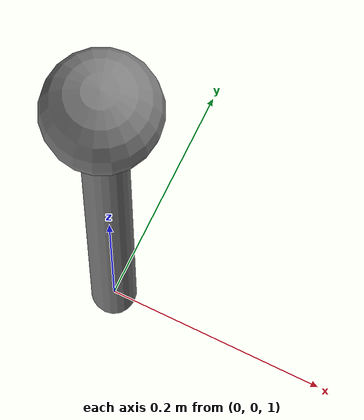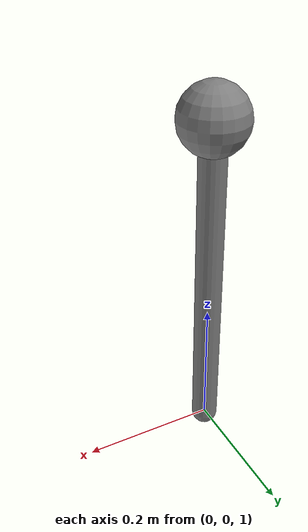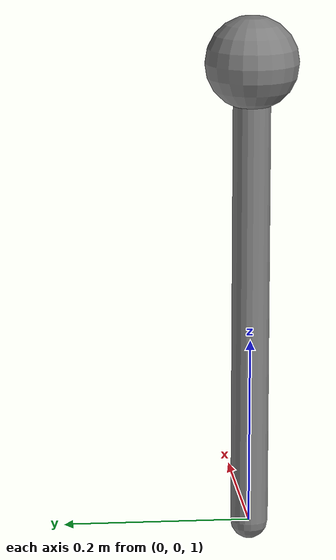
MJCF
<mujoco model="inverted_pendulum">
    <option timestep="0.02" gravity="0 0 -9.81"/>

    <worldbody>
        <light pos="0 0 2"/>

        <!-- Ground (visual only) -->
        <geom type="plane" size="2 2 0.1" rgba="0.8 0.8 0.8 1"/>

        <!-- Pendulum body -->
        <body name="pole" pos="0 0 1">
            <!-- Hinge at the pivot -->
            <joint name="hinge"
                   type="hinge"
                   pos="0 0 0"
                   axis="1 0 0"
                   damping="0.01"/>

            <!-- Massless rod -->
            <geom type="capsule"
                  fromto="0 0 0 0 0 0.5"
                  size="0.02"
                  mass="0"/>

            <!-- Point mass -->
            <geom type="sphere"
                  pos="0 0 0.5"
                  size="0.05"
                  mass="1"/>
        </body>
    </worldbody>

    <actuator>
        <motor name="torque"
               joint="hinge"
               gear="1"
               ctrlrange="-10 10"
               ctrllimited="true"/>
    </actuator>
</mujoco>
